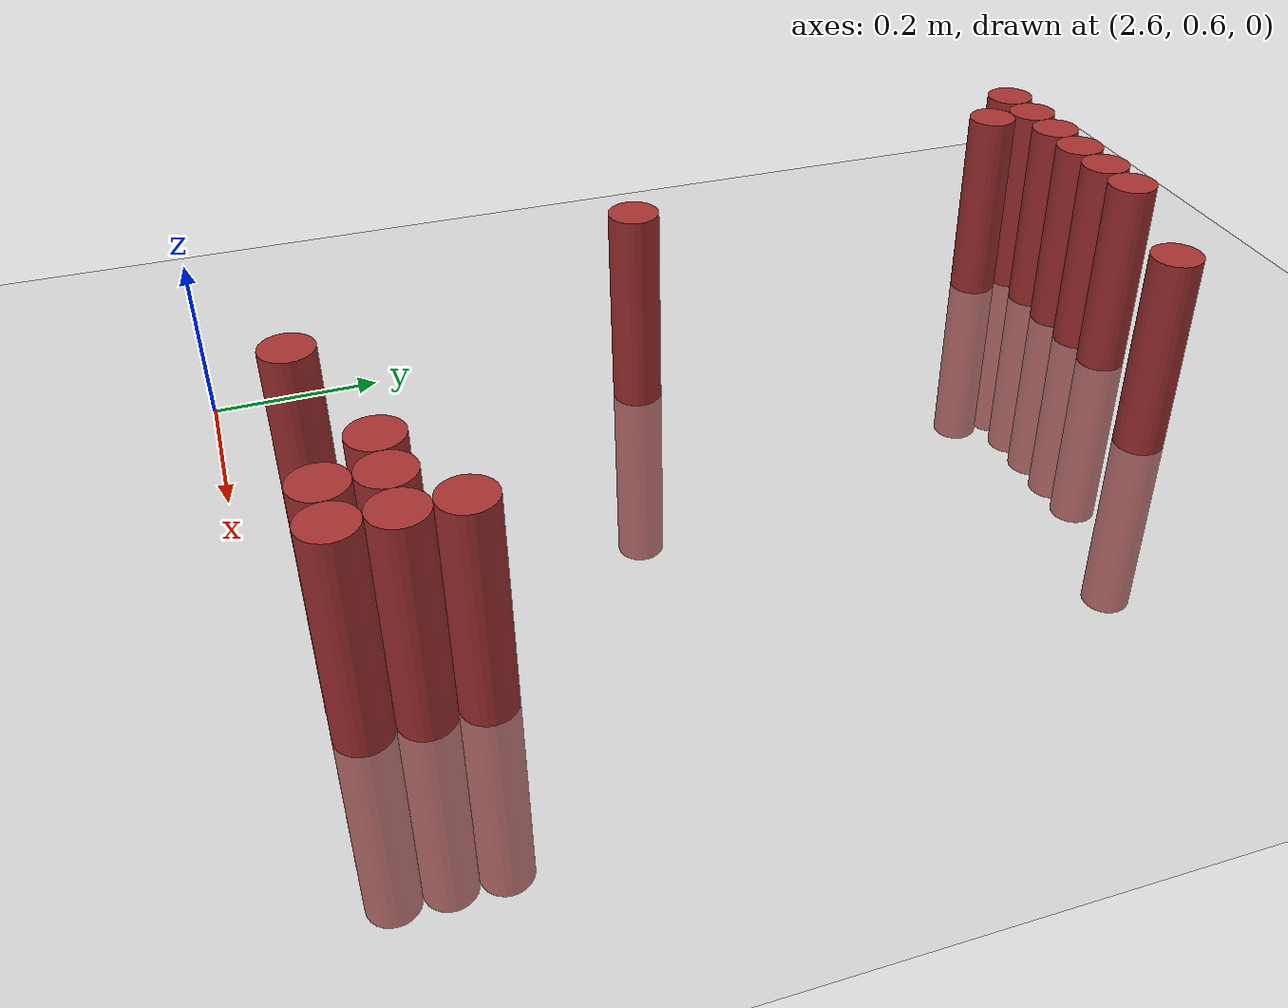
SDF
<sdf version="1.6">
 <world name="default">
  <model name="ground_plane">
   <static>1</static>
   <link name="link">
    <collision name="collision">
     <geometry><plane><normal>0 0 1</normal><size>100 100</size></plane></geometry>
     <surface><friction><ode><mu>100</mu><mu2>50</mu2></ode></friction></surface>
    </collision>
    <visual name="visual">
     <cast_shadows>0</cast_shadows>
     <geometry><plane><normal>0 0 1</normal><size>100 100</size></plane></geometry>
     <material>
      <script><uri>file://media/materials/scripts/gazebo.material</uri><name>Gazebo/Grey</name></script>
     </material>
    </visual>
   </link>
  </model>
  <model name="unit_cylinder_127">
   <static>1</static>
   <pose>2.550000 1.710000 0.000000 0.000000 0.000000 0.000000</pose>
   <link name="link">
    <inertial>
     <mass>1</mass>
     <inertia><ixx>0.145833</ixx><ixy>0</ixy><ixz>0</ixz><iyy>0.145833</iyy><iyz>0</iyz><izz>0.125</izz></inertia>
    </inertial>
    <collision name="collision">
     <geometry><cylinder><radius>0.030000</radius><length>0.5</length></cylinder></geometry>
    </collision>
    <visual name="visual">
     <geometry><cylinder><radius>0.030000</radius><length>0.5</length></cylinder></geometry>
     <material>
      <ambient>0.648000 0.192000 0.192000 1</ambient>
      <diffuse>0.648000 0.192000 0.192000 1</diffuse>
     </material>
     <material>
      <script><name>Gazebo/Grey</name><uri>file://media/materials/scripts/gazebo.material</uri></script>
     </material>
    </visual>
   </link>
  </model>
  <model name="unit_cylinder_128">
   <static>1</static>
   <pose>2.610000 1.710000 0.000000 0.000000 0.000000 0.000000</pose>
   <link name="link">
    <inertial>
     <mass>1</mass>
     <inertia><ixx>0.145833</ixx><ixy>0</ixy><ixz>0</ixz><iyy>0.145833</iyy><iyz>0</iyz><izz>0.125</izz></inertia>
    </inertial>
    <collision name="collision">
     <geometry><cylinder><radius>0.030000</radius><length>0.5</length></cylinder></geometry>
    </collision>
    <visual name="visual">
     <geometry><cylinder><radius>0.030000</radius><length>0.5</length></cylinder></geometry>
     <material>
      <ambient>0.648000 0.192000 0.192000 1</ambient>
      <diffuse>0.648000 0.192000 0.192000 1</diffuse>
     </material>
     <material>
      <script><name>Gazebo/Grey</name><uri>file://media/materials/scripts/gazebo.material</uri></script>
     </material>
    </visual>
   </link>
  </model>
  <model name="unit_cylinder_129">
   <static>1</static>
   <pose>2.670000 1.710000 0.000000 0.000000 0.000000 0.000000</pose>
   <link name="link">
    <inertial>
     <mass>1</mass>
     <inertia><ixx>0.145833</ixx><ixy>0</ixy><ixz>0</ixz><iyy>0.145833</iyy><iyz>0</iyz><izz>0.125</izz></inertia>
    </inertial>
    <collision name="collision">
     <geometry><cylinder><radius>0.030000</radius><length>0.5</length></cylinder></geometry>
    </collision>
    <visual name="visual">
     <geometry><cylinder><radius>0.030000</radius><length>0.5</length></cylinder></geometry>
     <material>
      <ambient>0.648000 0.192000 0.192000 1</ambient>
      <diffuse>0.648000 0.192000 0.192000 1</diffuse>
     </material>
     <material>
      <script><name>Gazebo/Grey</name><uri>file://media/materials/scripts/gazebo.material</uri></script>
     </material>
    </visual>
   </link>
  </model>
  <model name="unit_cylinder_130">
   <static>1</static>
   <pose>2.730000 1.710000 0.000000 0.000000 0.000000 0.000000</pose>
   <link name="link">
    <inertial>
     <mass>1</mass>
     <inertia><ixx>0.145833</ixx><ixy>0</ixy><ixz>0</ixz><iyy>0.145833</iyy><iyz>0</iyz><izz>0.125</izz></inertia>
    </inertial>
    <collision name="collision">
     <geometry><cylinder><radius>0.030000</radius><length>0.5</length></cylinder></geometry>
    </collision>
    <visual name="visual">
     <geometry><cylinder><radius>0.030000</radius><length>0.5</length></cylinder></geometry>
     <material>
      <ambient>0.648000 0.192000 0.192000 1</ambient>
      <diffuse>0.648000 0.192000 0.192000 1</diffuse>
     </material>
     <material>
      <script><name>Gazebo/Grey</name><uri>file://media/materials/scripts/gazebo.material</uri></script>
     </material>
    </visual>
   </link>
  </model>
  <model name="unit_cylinder_131">
   <static>1</static>
   <pose>2.790000 1.710000 0.000000 0.000000 0.000000 0.000000</pose>
   <link name="link">
    <inertial>
     <mass>1</mass>
     <inertia><ixx>0.145833</ixx><ixy>0</ixy><ixz>0</ixz><iyy>0.145833</iyy><iyz>0</iyz><izz>0.125</izz></inertia>
    </inertial>
    <collision name="collision">
     <geometry><cylinder><radius>0.030000</radius><length>0.5</length></cylinder></geometry>
    </collision>
    <visual name="visual">
     <geometry><cylinder><radius>0.030000</radius><length>0.5</length></cylinder></geometry>
     <material>
      <ambient>0.648000 0.192000 0.192000 1</ambient>
      <diffuse>0.648000 0.192000 0.192000 1</diffuse>
     </material>
     <material>
      <script><name>Gazebo/Grey</name><uri>file://media/materials/scripts/gazebo.material</uri></script>
     </material>
    </visual>
   </link>
  </model>
  <model name="unit_cylinder_132">
   <static>1</static>
   <pose>2.850000 1.710000 0.000000 0.000000 0.000000 0.000000</pose>
   <link name="link">
    <inertial>
     <mass>1</mass>
     <inertia><ixx>0.145833</ixx><ixy>0</ixy><ixz>0</ixz><iyy>0.145833</iyy><iyz>0</iyz><izz>0.125</izz></inertia>
    </inertial>
    <collision name="collision">
     <geometry><cylinder><radius>0.030000</radius><length>0.5</length></cylinder></geometry>
    </collision>
    <visual name="visual">
     <geometry><cylinder><radius>0.030000</radius><length>0.5</length></cylinder></geometry>
     <material>
      <ambient>0.648000 0.192000 0.192000 1</ambient>
      <diffuse>0.648000 0.192000 0.192000 1</diffuse>
     </material>
     <material>
      <script><name>Gazebo/Grey</name><uri>file://media/materials/scripts/gazebo.material</uri></script>
     </material>
    </visual>
   </link>
  </model>
  <model name="unit_cylinder_144">
   <static>1</static>
   <pose>2.610000 1.650000 0.000000 0.000000 0.000000 0.000000</pose>
   <link name="link">
    <inertial>
     <mass>1</mass>
     <inertia><ixx>0.145833</ixx><ixy>0</ixy><ixz>0</ixz><iyy>0.145833</iyy><iyz>0</iyz><izz>0.125</izz></inertia>
    </inertial>
    <collision name="collision">
     <geometry><cylinder><radius>0.030000</radius><length>0.5</length></cylinder></geometry>
    </collision>
    <visual name="visual">
     <geometry><cylinder><radius>0.030000</radius><length>0.5</length></cylinder></geometry>
     <material>
      <ambient>0.648000 0.192000 0.192000 1</ambient>
      <diffuse>0.648000 0.192000 0.192000 1</diffuse>
     </material>
     <material>
      <script><name>Gazebo/Grey</name><uri>file://media/materials/scripts/gazebo.material</uri></script>
     </material>
    </visual>
   </link>
  </model>
  <model name="unit_cylinder_145">
   <static>1</static>
   <pose>3.030000 1.650000 0.000000 0.000000 0.000000 0.000000</pose>
   <link name="link">
    <inertial>
     <mass>1</mass>
     <inertia><ixx>0.145833</ixx><ixy>0</ixy><ixz>0</ixz><iyy>0.145833</iyy><iyz>0</iyz><izz>0.125</izz></inertia>
    </inertial>
    <collision name="collision">
     <geometry><cylinder><radius>0.030000</radius><length>0.5</length></cylinder></geometry>
    </collision>
    <visual name="visual">
     <geometry><cylinder><radius>0.030000</radius><length>0.5</length></cylinder></geometry>
     <material>
      <ambient>0.648000 0.192000 0.192000 1</ambient>
      <diffuse>0.648000 0.192000 0.192000 1</diffuse>
     </material>
     <material>
      <script><name>Gazebo/Grey</name><uri>file://media/materials/scripts/gazebo.material</uri></script>
     </material>
    </visual>
   </link>
  </model>
  <model name="unit_cylinder_168">
   <static>1</static>
   <pose>2.730000 1.110000 0.000000 0.000000 0.000000 0.000000</pose>
   <link name="link">
    <inertial>
     <mass>1</mass>
     <inertia><ixx>0.145833</ixx><ixy>0</ixy><ixz>0</ixz><iyy>0.145833</iyy><iyz>0</iyz><izz>0.125</izz></inertia>
    </inertial>
    <collision name="collision">
     <geometry><cylinder><radius>0.030000</radius><length>0.5</length></cylinder></geometry>
    </collision>
    <visual name="visual">
     <geometry><cylinder><radius>0.030000</radius><length>0.5</length></cylinder></geometry>
     <material>
      <ambient>0.648000 0.192000 0.192000 1</ambient>
      <diffuse>0.648000 0.192000 0.192000 1</diffuse>
     </material>
     <material>
      <script><name>Gazebo/Grey</name><uri>file://media/materials/scripts/gazebo.material</uri></script>
     </material>
    </visual>
   </link>
  </model>
  <model name="unit_cylinder_176">
   <static>1</static>
   <pose>3.210000 0.810000 0.000000 0.000000 0.000000 0.000000</pose>
   <link name="link">
    <inertial>
     <mass>1</mass>
     <inertia><ixx>0.145833</ixx><ixy>0</ixy><ixz>0</ixz><iyy>0.145833</iyy><iyz>0</iyz><izz>0.125</izz></inertia>
    </inertial>
    <collision name="collision">
     <geometry><cylinder><radius>0.030000</radius><length>0.5</length></cylinder></geometry>
    </collision>
    <visual name="visual">
     <geometry><cylinder><radius>0.030000</radius><length>0.5</length></cylinder></geometry>
     <material>
      <ambient>0.648000 0.192000 0.192000 1</ambient>
      <diffuse>0.648000 0.192000 0.192000 1</diffuse>
     </material>
     <material>
      <script><name>Gazebo/Grey</name><uri>file://media/materials/scripts/gazebo.material</uri></script>
     </material>
    </visual>
   </link>
  </model>
  <model name="unit_cylinder_178">
   <static>1</static>
   <pose>3.090000 0.750000 0.000000 0.000000 0.000000 0.000000</pose>
   <link name="link">
    <inertial>
     <mass>1</mass>
     <inertia><ixx>0.145833</ixx><ixy>0</ixy><ixz>0</ixz><iyy>0.145833</iyy><iyz>0</iyz><izz>0.125</izz></inertia>
    </inertial>
    <collision name="collision">
     <geometry><cylinder><radius>0.030000</radius><length>0.5</length></cylinder></geometry>
    </collision>
    <visual name="visual">
     <geometry><cylinder><radius>0.030000</radius><length>0.5</length></cylinder></geometry>
     <material>
      <ambient>0.648000 0.192000 0.192000 1</ambient>
      <diffuse>0.648000 0.192000 0.192000 1</diffuse>
     </material>
     <material>
      <script><name>Gazebo/Grey</name><uri>file://media/materials/scripts/gazebo.material</uri></script>
     </material>
    </visual>
   </link>
  </model>
  <model name="unit_cylinder_179">
   <static>1</static>
   <pose>3.150000 0.750000 0.000000 0.000000 0.000000 0.000000</pose>
   <link name="link">
    <inertial>
     <mass>1</mass>
     <inertia><ixx>0.145833</ixx><ixy>0</ixy><ixz>0</ixz><iyy>0.145833</iyy><iyz>0</iyz><izz>0.125</izz></inertia>
    </inertial>
    <collision name="collision">
     <geometry><cylinder><radius>0.030000</radius><length>0.5</length></cylinder></geometry>
    </collision>
    <visual name="visual">
     <geometry><cylinder><radius>0.030000</radius><length>0.5</length></cylinder></geometry>
     <material>
      <ambient>0.648000 0.192000 0.192000 1</ambient>
      <diffuse>0.648000 0.192000 0.192000 1</diffuse>
     </material>
     <material>
      <script><name>Gazebo/Grey</name><uri>file://media/materials/scripts/gazebo.material</uri></script>
     </material>
    </visual>
   </link>
  </model>
  <model name="unit_cylinder_180">
   <static>1</static>
   <pose>3.210000 0.750000 0.000000 0.000000 0.000000 0.000000</pose>
   <link name="link">
    <inertial>
     <mass>1</mass>
     <inertia><ixx>0.145833</ixx><ixy>0</ixy><ixz>0</ixz><iyy>0.145833</iyy><iyz>0</iyz><izz>0.125</izz></inertia>
    </inertial>
    <collision name="collision">
     <geometry><cylinder><radius>0.030000</radius><length>0.5</length></cylinder></geometry>
    </collision>
    <visual name="visual">
     <geometry><cylinder><radius>0.030000</radius><length>0.5</length></cylinder></geometry>
     <material>
      <ambient>0.648000 0.192000 0.192000 1</ambient>
      <diffuse>0.648000 0.192000 0.192000 1</diffuse>
     </material>
     <material>
      <script><name>Gazebo/Grey</name><uri>file://media/materials/scripts/gazebo.material</uri></script>
     </material>
    </visual>
   </link>
  </model>
  <model name="unit_cylinder_183">
   <static>1</static>
   <pose>2.910000 0.690000 0.000000 0.000000 0.000000 0.000000</pose>
   <link name="link">
    <inertial>
     <mass>1</mass>
     <inertia><ixx>0.145833</ixx><ixy>0</ixy><ixz>0</ixz><iyy>0.145833</iyy><iyz>0</iyz><izz>0.125</izz></inertia>
    </inertial>
    <collision name="collision">
     <geometry><cylinder><radius>0.030000</radius><length>0.5</length></cylinder></geometry>
    </collision>
    <visual name="visual">
     <geometry><cylinder><radius>0.030000</radius><length>0.5</length></cylinder></geometry>
     <material>
      <ambient>0.648000 0.192000 0.192000 1</ambient>
      <diffuse>0.648000 0.192000 0.192000 1</diffuse>
     </material>
     <material>
      <script><name>Gazebo/Grey</name><uri>file://media/materials/scripts/gazebo.material</uri></script>
     </material>
    </visual>
   </link>
  </model>
  <model name="unit_cylinder_184">
   <static>1</static>
   <pose>3.150000 0.690000 0.000000 0.000000 0.000000 0.000000</pose>
   <link name="link">
    <inertial>
     <mass>1</mass>
     <inertia><ixx>0.145833</ixx><ixy>0</ixy><ixz>0</ixz><iyy>0.145833</iyy><iyz>0</iyz><izz>0.125</izz></inertia>
    </inertial>
    <collision name="collision">
     <geometry><cylinder><radius>0.030000</radius><length>0.5</length></cylinder></geometry>
    </collision>
    <visual name="visual">
     <geometry><cylinder><radius>0.030000</radius><length>0.5</length></cylinder></geometry>
     <material>
      <ambient>0.648000 0.192000 0.192000 1</ambient>
      <diffuse>0.648000 0.192000 0.192000 1</diffuse>
     </material>
     <material>
      <script><name>Gazebo/Grey</name><uri>file://media/materials/scripts/gazebo.material</uri></script>
     </material>
    </visual>
   </link>
  </model>
  <model name="unit_cylinder_185">
   <static>1</static>
   <pose>3.210000 0.690000 0.000000 0.000000 0.000000 0.000000</pose>
   <link name="link">
    <inertial>
     <mass>1</mass>
     <inertia><ixx>0.145833</ixx><ixy>0</ixy><ixz>0</ixz><iyy>0.145833</iyy><iyz>0</iyz><izz>0.125</izz></inertia>
    </inertial>
    <collision name="collision">
     <geometry><cylinder><radius>0.030000</radius><length>0.5</length></cylinder></geometry>
    </collision>
    <visual name="visual">
     <geometry><cylinder><radius>0.030000</radius><length>0.5</length></cylinder></geometry>
     <material>
      <ambient>0.648000 0.192000 0.192000 1</ambient>
      <diffuse>0.648000 0.192000 0.192000 1</diffuse>
     </material>
     <material>
      <script><name>Gazebo/Grey</name><uri>file://media/materials/scripts/gazebo.material</uri></script>
     </material>
    </visual>
   </link>
  </model>
 </world>
</sdf>
